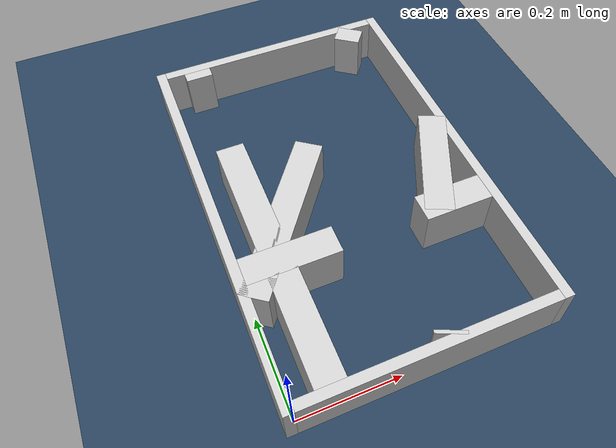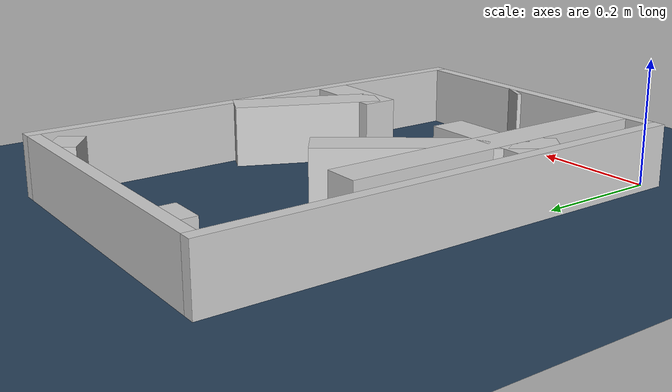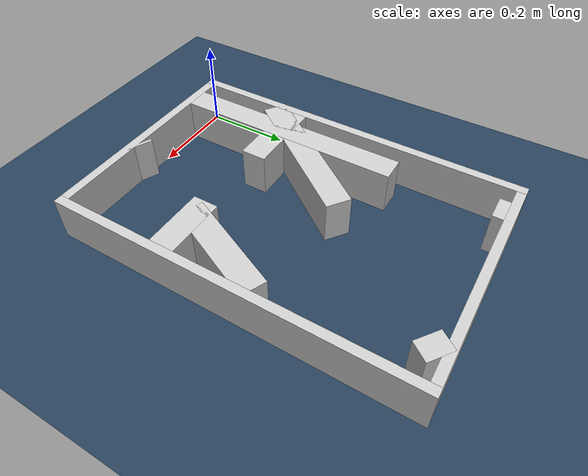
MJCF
<?xml version="1.0" ?>
<mujoco model="generated_real_template">
  <compiler angle="degree"/>
  <option timestep="0.002" integrator="implicitfast" iterations="100" cone="elliptic"/>
  <default>
    <geom density="1"/>
  </default>
  <asset>
    <texture builtin="gradient" height="3072" rgb1="0.3 0.5 0.7" rgb2="0 0 0" type="skybox" width="512"/>
    <texture builtin="checker" height="300" mark="edge" markrgb="0.8 0.8 0.8" name="groundplane" rgb1="0.2 0.3 0.4" rgb2="0.1 0.2 0.3" type="2d" width="300"/>
    <material name="groundplane" reflectance="0.2" texrepeat="5 5" texture="groundplane" texuniform="true"/>
  </asset>
  <worldbody>
    <light dir="0 0 -1" directional="true" pos="0 0 1.5"/>
    <geom name="floor" type="plane" condim="4" friction="0.5 0.005 0.001" material="groundplane" size="0 0 0.05"/>
    <body name="walls">
      <geom name="wall_boundary_left" type="box" condim="4" friction="1.0 0.005 0.0001" rgba="0.8 0.8 0.8 1" pos="-0.010000 0.387500 0.050000" euler="0 0 0.000000" size="0.010000 0.407500 0.050000"/>
      <geom name="wall_boundary_right" type="box" condim="4" friction="1.0 0.005 0.0001" rgba="0.8 0.8 0.8 1" pos="0.500000 0.387500 0.050000" euler="0 0 0.000000" size="0.010000 0.407500 0.050000"/>
      <geom name="wall_boundary_bottom" type="box" condim="4" friction="1.0 0.005 0.0001" rgba="0.8 0.8 0.8 1" pos="0.245000 -0.010000 0.050000" euler="0 0 0.000000" size="0.245000 0.010000 0.050000"/>
      <geom name="wall_boundary_top" type="box" condim="4" friction="1.0 0.005 0.0001" rgba="0.8 0.8 0.8 1" pos="0.245000 0.785000 0.050000" euler="0 0 0.000000" size="0.245000 0.010000 0.050000"/>
      <geom name="wall_inner_1_1" type="box" condim="4" friction="1.0 0.005 0.0001" rgba="0.8 0.8 0.8 1" pos="0.067131 0.265078 0.050000" euler="0 0 90.000000" size="0.265078 0.028500 0.050000"/>
      <geom name="wall_inner_1_2" type="box" condim="4" friction="1.0 0.005 0.0001" rgba="0.8 0.8 0.8 1" pos="0.067131 0.763101 0.050000" euler="0 0 90.000000" size="0.011899 0.028500 0.050000"/>
      <geom name="wall_inner_2_1" type="box" condim="4" friction="1.0 0.005 0.0001" rgba="0.8 0.8 0.8 1" pos="0.110679 0.332560 0.050000" euler="0 0 53.239487" size="0.180201 0.028500 0.050000"/>
      <geom name="wall_inner_2_2" type="box" condim="4" friction="1.0 0.005 0.0001" rgba="0.8 0.8 0.8 1" pos="0.428485 0.757993 0.050000" euler="0 0 53.239487" size="0.021229 0.028500 0.050000"/>
      <geom name="wall_inner_3_1" type="box" condim="4" friction="1.0 0.005 0.0001" rgba="0.8 0.8 0.8 1" pos="0.090973 0.243929 0.050000" euler="0 0 0.000000" size="0.090973 0.028500 0.050000"/>
      <geom name="wall_inner_3_2" type="box" condim="4" friction="1.0 0.005 0.0001" rgba="0.8 0.8 0.8 1" pos="0.421163 0.243929 0.050000" euler="0 0 0.000000" size="0.068837 0.028500 0.050000"/>
      <geom name="wall_inner_4_1" type="box" condim="4" friction="1.0 0.005 0.0001" rgba="0.8 0.8 0.8 1" pos="0.433991 0.338029 0.050000" euler="0 0 -114.442033" size="0.120989 0.028500 0.050000"/>
      <geom name="wall_inner_4_2" type="box" condim="4" friction="1.0 0.005 0.0001" rgba="0.8 0.8 0.8 1" pos="0.281748 0.003064 0.050000" euler="0 0 -114.442033" size="0.003366 0.028500 0.050000"/>
    </body>
  </worldbody>
</mujoco>
